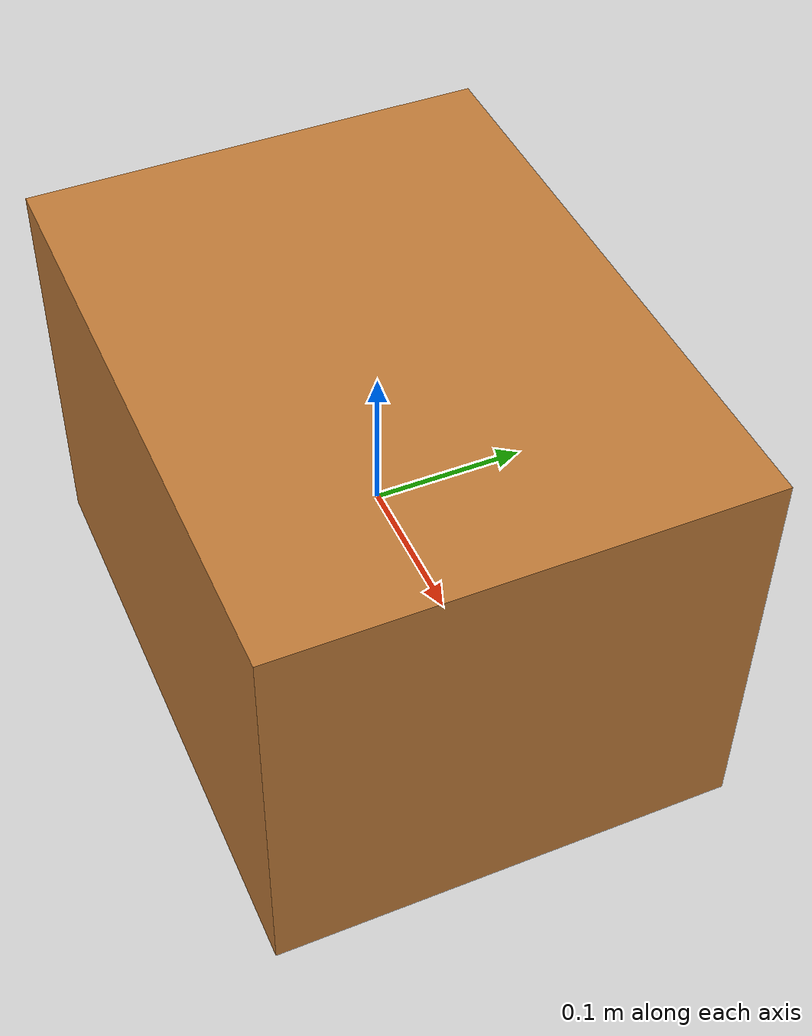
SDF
<?xml version="1.0"?>
<sdf version="1.8">
  <model name="generator_box">
    <static>false</static>
    <link name="box_link">
      <inertial>
        <mass>11.800189</mass>
        <inertia><ixx>0.17159442</ixx><iyy>0.24239555</iyy><izz>0.25980083</izz><ixy>0</ixy><ixz>0</ixz><iyz>0</iyz></inertia>
      </inertial>
      <collision name="collision">
        <geometry><box><size>0.4100 0.3100 0.2800</size></box></geometry>
        <surface><friction><ode><mu>0.9</mu><mu2>0.9</mu2></ode></friction></surface>
      </collision>
      <visual name="visual">
        <geometry><box><size>0.4100 0.3100 0.2800</size></box></geometry>
        <material><ambient>0.55 0.32 0.12 1</ambient><diffuse>0.75 0.48 0.22 1</diffuse></material>
      </visual>
    </link>
    <!-- Dev/test-only ground-truth pose (perception uses the cameras). Gazebo 6 publishes the
         model's own pose only with publish_nested_model_pose=true. -->
    <plugin filename="ignition-gazebo-pose-publisher-system" name="gz::sim::systems::PosePublisher">
      <publish_model_pose>true</publish_model_pose>
      <publish_link_pose>false</publish_link_pose>
      <publish_collision_pose>false</publish_collision_pose>
      <publish_visual_pose>false</publish_visual_pose>
      <publish_nested_model_pose>true</publish_nested_model_pose>
      <update_frequency>30</update_frequency>
      <use_pose_vector_msg>false</use_pose_vector_msg>
    </plugin>
  </model>
</sdf>
